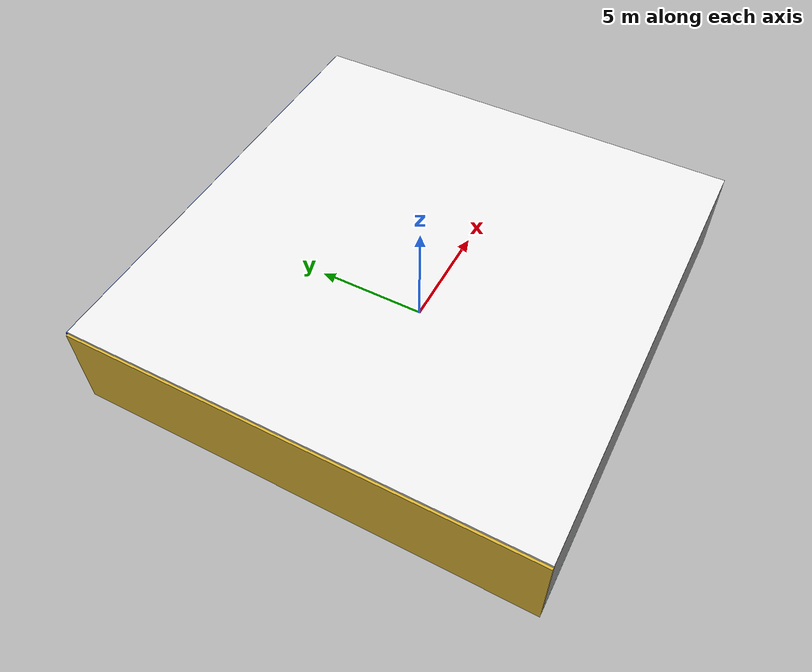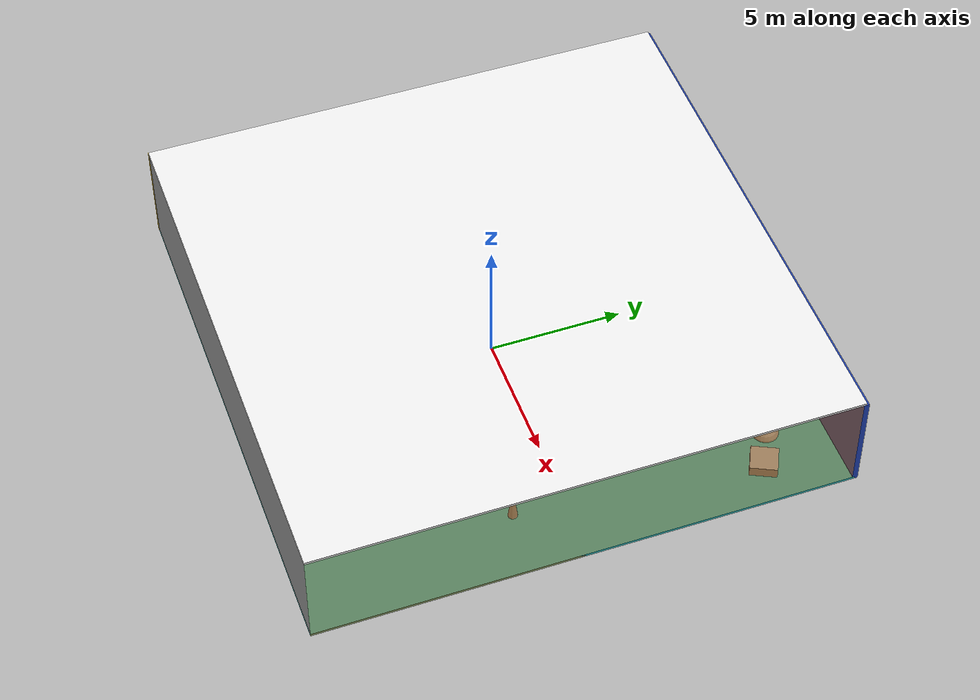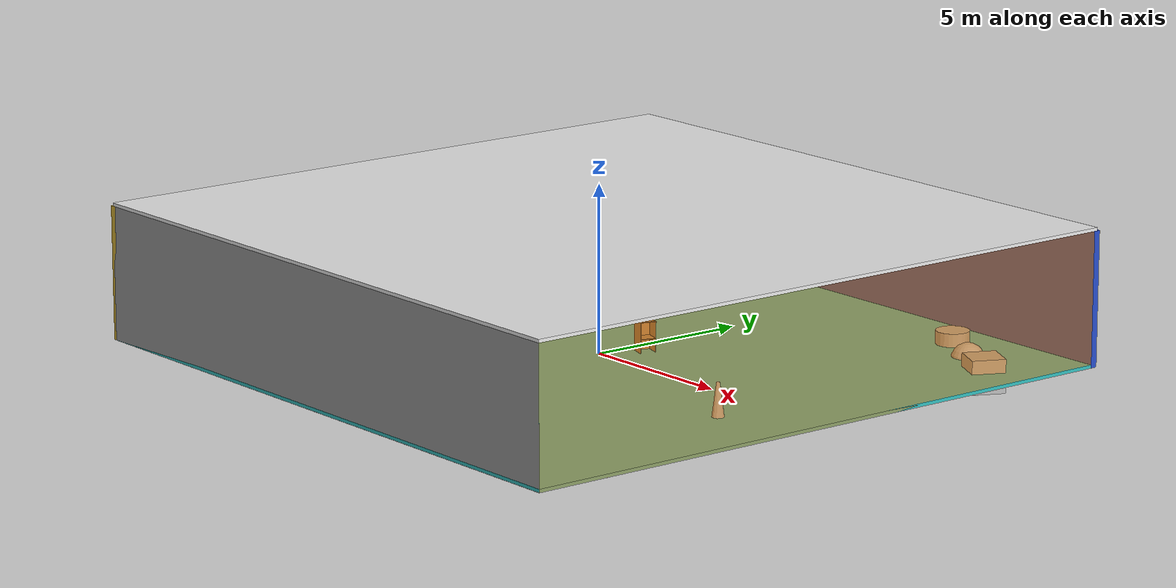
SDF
<sdf version="1.4">
 <world name="default">
  <physics type="ode">
   <max_step_size>0.001</max_step_size>
   <real_time_factor>1</real_time_factor>
   <real_time_update_rate>1000</real_time_update_rate>
   <gravity>0 0 -9.8</gravity>
  </physics>
  <scene><ambient>0.4 0.4 0.4 1</ambient><background>0.7 0.7 0.7 1</background><shadows>1</shadows></scene>
  <model name="Surrounding">
   <static>1</static>
   <link name="Ceiling">
    <collision name="Ceiling_Collision"><geometry><box><size>20 20 0.1</size></box></geometry></collision>
    <visual name="Ceiling_Visual">
     <geometry><box><size>20 20 0.1</size></box></geometry>
     <material>
      <script><uri>file://media/materials/scripts/gazebo.material</uri><name>Gazebo/White</name></script>
     </material>
    </visual>
    <pose>0 0 4.05 0 0 0</pose>
   </link>
   <link name="Wall_South">
    <collision name="Wall_South_Collision">
     <geometry><box><size>20 0 4</size></box></geometry>
     <pose>0 0 2 0 -0 0</pose>
    </collision>
    <visual name="Wall_South_Visual">
     <pose>0 0 2 0 -0 0</pose>
     <geometry><box><size>20 0 4</size></box></geometry>
     <material>
      <script><uri>file://media/materials/scripts/gazebo.material</uri><name>Gazebo/Grey</name></script>
     </material>
    </visual>
    <velocity_decay><linear>0</linear><angular>0</angular></velocity_decay>
    <pose>0 -10 0 0 -0 0</pose>
   </link>
   <link name="Wall_East">
    <collision name="Wall_21_Collision">
     <geometry><box><size>20 0 4</size></box></geometry>
     <pose>0 0 2 0 -0 0</pose>
    </collision>
    <visual name="Wall_21_Visual">
     <pose>0 0 2 0 -0 0</pose>
     <geometry><box><size>20 0 4</size></box></geometry>
     <material>
      <script>
       <uri>file://media/materials/scripts/gazebo.material</uri>
       <name>Gazebo/OrangeTransparent</name>
      </script>
     </material>
    </visual>
    <velocity_decay><linear>0</linear><angular>0</angular></velocity_decay>
    <pose>10 0 0 0 -0 1.5708</pose>
   </link>
   <link name="Wall_North">
    <collision name="Wall_22_Collision">
     <geometry><box><size>20 0.2 4</size></box></geometry>
     <pose>0 0 2 0 -0 0</pose>
    </collision>
    <visual name="Wall_22_Visual">
     <pose>0 0 2 0 -0 0</pose>
     <geometry><box><size>20 0.2 4</size></box></geometry>
     <material>
      <script><uri>file://media/materials/scripts/gazebo.material</uri><name>Gazebo/BlueGlow</name></script>
     </material>
    </visual>
    <velocity_decay><linear>0</linear><angular>0</angular></velocity_decay>
    <pose>0 10 0 0 -0 0</pose>
   </link>
   <link name="Wall_West">
    <collision name="Wall_23_Collision">
     <geometry><box><size>20 0.2 4</size></box></geometry>
     <pose>0 0 2 0 -0 0</pose>
    </collision>
    <visual name="Wall_23_Visual">
     <pose>0 0 2 0 -0 0</pose>
     <geometry><box><size>20 0.2 4</size></box></geometry>
     <material>
      <script><uri>file://media/materials/scripts/gazebo.material</uri><name>Gazebo/Gold</name></script>
     </material>
    </visual>
    <velocity_decay><linear>0</linear><angular>0</angular></velocity_decay>
    <pose>-10 0 0 0 0 -1.5708</pose>
   </link>
   <link name="Ground_link">
    <collision name="collision">
     <pose>0 0 .05 0 -0 0</pose>
     <geometry><box><size>20 20 0.1</size></box></geometry>
    </collision>
    <visual name="visual">
     <pose>0 0 .05 0 -0 0</pose>
     <geometry><box><size>20 20 0.1</size></box></geometry>
     <material>
      <script><uri>file://media/materials/scripts/gazebo.material</uri><name>Gazebo/TurquoiseGlow</name></script>
     </material>
    </visual>
   </link>
   <static>1</static>
  </model>
  <spherical_coordinates>
   <surface_model>EARTH_WGS84</surface_model>
   <latitude_deg>0</latitude_deg>
   <longitude_deg>0</longitude_deg>
   <elevation>0</elevation>
   <heading_deg>0</heading_deg>
  </spherical_coordinates>
  <light name="lightball_0" type="diffuse">
   <diffuse>0.8 0.8 0.8 1</diffuse>
   <specular>0.2 0.2 0.2 1</specular>
   <attenuation>
    <range>100</range>
    <constant>0.7</constant>
    <linear>0.01</linear>
    <quadratic>0.001</quadratic>
   </attenuation>
   <direction>-0.5 0.1 -0.9</direction>
   <pose>7.24578934787 -3.66631825587 2.05471297567 0 0 0</pose>
  </light>
  <light name="lightball_1" type="diffuse">
   <diffuse>0.8 0.8 0.8 1</diffuse>
   <specular>0.2 0.2 0.2 1</specular>
   <attenuation>
    <range>100</range>
    <constant>0.7</constant>
    <linear>0.01</linear>
    <quadratic>0.001</quadratic>
   </attenuation>
   <direction>-0.5 0.1 -0.9</direction>
   <pose>-7.23546153163 4.01638836197 3.33396613608 0 0 0</pose>
  </light>
  <light name="lightball_2" type="diffuse">
   <diffuse>0.8 0.8 0.8 1</diffuse>
   <specular>0.2 0.2 0.2 1</specular>
   <attenuation>
    <range>100</range>
    <constant>0.7</constant>
    <linear>0.01</linear>
    <quadratic>0.001</quadratic>
   </attenuation>
   <direction>-0.5 0.1 -0.9</direction>
   <pose>9.767134554 0.293936388362 0.616841681062 0 0 0</pose>
  </light>
  <light name="lightball_3" type="diffuse">
   <diffuse>0.8 0.8 0.8 1</diffuse>
   <specular>0.2 0.2 0.2 1</specular>
   <attenuation>
    <range>100</range>
    <constant>0.7</constant>
    <linear>0.01</linear>
    <quadratic>0.001</quadratic>
   </attenuation>
   <direction>-0.5 0.1 -0.9</direction>
   <pose>-0.861252278083 6.29635055513 0.883354320002 0 0 0</pose>
  </light>
  <light name="lightball_4" type="diffuse">
   <diffuse>0.8 0.8 0.8 1</diffuse>
   <specular>0.2 0.2 0.2 1</specular>
   <attenuation>
    <range>100</range>
    <constant>0.7</constant>
    <linear>0.01</linear>
    <quadratic>0.001</quadratic>
   </attenuation>
   <direction>-0.5 0.1 -0.9</direction>
   <pose>6.11506102172 9.16973780283 1.93866403377 0 0 0</pose>
  </light>
  <include><uri>model://cabinet</uri><pose>-4.19592029728 4.24181490079 0 0 0 0.14619010349</pose></include>
  <include>
   <uri>model://robocup_3Dsim_goal</uri>
   <pose>-1.42616188297 -4.17004693952 0 0 0 2.74323478961</pose>
  </include>
  <include><uri>model://cabinet</uri><pose>0.87874761909 0.97936919146 0 0 0 2.84840335349</pose></include>
  <include>
   <uri>model://construction_cone</uri>
   <pose>7.57380384501 -1.92469006562 0 0 0 2.81283874488</pose>
  </include>
  <include>
   <uri>model://textured_shapes</uri>
   <pose>7.10666050686 7.82323548154 0 0 0 1.11933801922</pose>
  </include>
 </world>
</sdf>

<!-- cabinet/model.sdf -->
<sdf version="1.5">
  <model name="cabinet">
    <static>true</static>
    <link name="cabinet_bottom_plate">
      <inertial>
        <pose>0 0 -1 0 0 0</pose>
        <inertia>
          <ixx>2.050000</ixx>
          <ixy>0</ixy>
          <ixz>0</ixz>
          <iyy>2.050000</iyy>
          <iyz>0</iyz>
          <izz>2.050000</izz>
        </inertia>
        <mass>25.000000</mass>
      </inertial>
      <collision name="cabinet_bottom_plate_geom">
        <pose>0 0 0.010000 0 0 0</pose>
        <geometry>
          <box>
            <size>0.450000 0.450000 0.020000</size>
          </box>
        </geometry>
      </collision>
      <visual name="cabinet_bottom_plate_geom_visual">
        <pose>0 0 0.010000 0 0 0</pose>
        <geometry>
          <box>
            <size>0.450000 0.450000 0.020000</size>
          </box>
        </geometry>
        <material>
          <script>
            <uri>model://media/materials/scripts/gazebo.material</uri>
            <name>Gazebo/Wood</name>
          </script>
        </material>
      </visual>
      <collision name="cabinet_bottom_plate_geom_cabinet_back_plate">
        <pose>0.235000 0 0.510000 0 0 0</pose>
        <geometry>
          <box>
            <size>0.020000 0.450000 1.020000</size>
          </box>
        </geometry>
      </collision>
      <visual name="cabinet_bottom_plate_geom_cabinet_back_plate_visual">
        <pose>0.235000 0 0.510000 0 0 0</pose>
        <geometry>
          <box>
            <size>0.020000 0.450000 1.020000</size>
          </box>
        </geometry>
        <material>
          <script>
            <uri>model://media/materials/scripts/gazebo.material</uri>
            <name>Gazebo/Wood</name>
          </script>
        </material>
      </visual>
      <collision name="cabinet_bottom_plate_geom_cabinet_left_plate">
        <pose>0 0.235000 0.510000 0 0 0</pose>
        <geometry>
          <box>
            <size>0.450000 0.020000 1.020000</size>
          </box>
        </geometry>
      </collision>
      <visual name="cabinet_bottom_plate_geom_cabinet_left_plate_visual">
        <pose>0 0.235000 0.510000 0 0 0</pose>
        <geometry>
          <box>
            <size>0.450000 0.020000 1.020000</size>
          </box>
        </geometry>
        <material>
          <script>
            <uri>model://media/materials/scripts/gazebo.material</uri>
            <name>Gazebo/Wood</name>
          </script>
        </material>
      </visual>
      <collision name="cabinet_bottom_plate_geom_cabinet_middle_plate">
        <pose>0 0 0.510000 0 0 0</pose>
        <geometry>
          <box>
            <size>0.450000 0.450000 0.020000</size>
          </box>
        </geometry>
      </collision>
      <visual name="cabinet_bottom_plate_geom_cabinet_middle_plate_visual">
        <pose>0 0 0.510000 0 0 0</pose>
        <geometry>
          <box>
            <size>0.450000 0.450000 0.020000</size>
          </box>
        </geometry>
        <material>
          <script>
            <uri>model://media/materials/scripts/gazebo.material</uri>
            <name>Gazebo/Wood</name>
          </script>
        </material>
      </visual>
      <collision name="cabinet_bottom_plate_geom_cabinet_right_plate">
        <pose>0 -0.235000 0.510000 0 0 0</pose>
        <geometry>
          <box>
            <size>0.450000 0.020000 1.020000</size>
          </box>
        </geometry>
      </collision>
      <visual name="cabinet_bottom_plate_geom_cabinet_right_plate_visual">
        <pose>0 -0.235000 0.510000 0 0 0</pose>
        <geometry>
          <box>
            <size>0.450000 0.020000 1.020000</size>
          </box>
        </geometry>
        <material>
          <script>
            <uri>model://media/materials/scripts/gazebo.material</uri>
            <name>Gazebo/Wood</name>
          </script>
        </material>
      </visual>
      <collision name="cabinet_bottom_plate_geom_cabinet_top_plate">
        <pose>0 0 1.010000 0 0 0</pose>
        <geometry>
          <box>
            <size>0.450000 0.450000 0.020000</size>
          </box>
        </geometry>
      </collision>
      <visual name="cabinet_bottom_plate_geom_cabinet_top_plate_visual">
        <pose>0 0 1.010000 0 0 0</pose>
        <geometry>
          <box>
            <size>0.450000 0.450000 0.020000</size>
          </box>
        </geometry>
        <material>
          <script>
            <uri>model://media/materials/scripts/gazebo.material</uri>
            <name>Gazebo/Wood</name>
          </script>
        </material>
      </visual>
    </link>
  </model>
</sdf>

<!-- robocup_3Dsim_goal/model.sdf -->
<sdf version="1.5">
  <model name="robocup_3d_goal">
    <static>true</static>
    <link name="left_post">
      <pose>0 1.05 0.45 0 0 0</pose>
      <collision name="collision">
        <geometry>
          <cylinder>
            <radius>0.05</radius>
            <length>0.9</length>
          </cylinder>
        </geometry>
      </collision>
      <visual name="visual">
        <geometry>
          <cylinder>
            <radius>0.05</radius>
            <length>0.9</length>
          </cylinder>
        </geometry>
        <material>
          <script>
            <uri>file://media/materials/scripts/gazebo.material</uri>
            <name>Gazebo/ZincYellow</name>
          </script>
        </material>
      </visual>
    </link>
    <link name="left_support_horiz_lower">
      <pose>0.30 1.05 0.01 0 0 0</pose>
      <collision name="collision">
        <geometry>
          <box>
            <size>0.50 0.02 0.02</size>
          </box>
        </geometry>
      </collision>
      <visual name="visual">
        <geometry>
          <box>
            <size>0.50 0.02 0.02</size>
          </box>
        </geometry>
        <material>
          <script>
            <uri>file://media/materials/scripts/gazebo.material</uri>
            <name>Gazebo/White</name>
          </script>
        </material>
      </visual>
    </link>
    <link name="left_support_horiz_upper">
      <pose>0.30 1.05 0.79 0 0 0</pose>
      <collision name="collision">
        <geometry>
          <box>
            <size>0.50 0.02 0.02</size>
          </box>
        </geometry>
      </collision>
      <visual name="visual">
        <geometry>
          <box>
            <size>0.50 0.02 0.02</size>
          </box>
        </geometry>
        <material>
          <script>
            <uri>file://media/materials/scripts/gazebo.material</uri>
            <name>Gazebo/White</name>
          </script>
        </material>
      </visual>
    </link>
    <link name="left_support_vertical">
      <pose>0.56 1.05 0.4 0 1.5708 0</pose>
      <collision name="collision">
        <geometry>
          <box>
            <size>0.80 0.02 0.02</size>
          </box>
        </geometry>
      </collision>
      <visual name="visual">
        <geometry>
          <box>
            <size>0.80 0.02 0.02</size>
          </box>
        </geometry>
        <material>
          <script>
            <uri>file://media/materials/scripts/gazebo.material</uri>
            <name>Gazebo/White</name>
          </script>
        </material>
      </visual>
    </link>
    <link name="right_support_horiz_lower">
      <pose>0.30 -1.05 0.01 0 0 0</pose>
      <collision name="collision">
        <geometry>
          <box>
            <size>0.50 0.02 0.02</size>
          </box>
        </geometry>
      </collision>
      <visual name="visual">
        <geometry>
          <box>
            <size>0.50 0.02 0.02</size>
          </box>
        </geometry>
        <material>
          <script>
            <uri>file://media/materials/scripts/gazebo.material</uri>
            <name>Gazebo/White</name>
          </script>
        </material>
      </visual>
    </link>
    <link name="right_support_horiz_upper">
      <pose>0.30 -1.05 0.79 0 0 0</pose>
      <collision name="collision">
        <geometry>
          <box>
            <size>0.50 0.02 0.02</size>
          </box>
        </geometry>
      </collision>
      <visual name="visual">
        <geometry>
          <box>
            <size>0.50 0.02 0.02</size>
          </box>
        </geometry>
        <material>
          <script>
            <uri>file://media/materials/scripts/gazebo.material</uri>
            <name>Gazebo/White</name>
          </script>
        </material>
      </visual>
    </link>
    <link name="right_support_vertical">
      <pose>0.56 -1.05 0.4 0 1.5708 0</pose>
      <collision name="collision">
        <geometry>
          <box>
            <size>0.80 0.02 0.02</size>
          </box>
        </geometry>
      </collision>
      <visual name="visual">
        <geometry>
          <box>
            <size>0.80 0.02 0.02</size>
          </box>
        </geometry>
        <material>
          <script>
            <uri>file://media/materials/scripts/gazebo.material</uri>
            <name>Gazebo/White</name>
          </script>
        </material>
      </visual>
    </link>
    <link name="center_support_horiz_lower">
      <pose>0.56 0 0.01 0 1.5708 0</pose>
      <collision name="collision">
        <geometry>
          <box>
            <size>0.02 2.08 0.02</size>
          </box>
        </geometry>
      </collision>
      <visual name="visual">
        <geometry>
          <box>
            <size>0.02 2.08 0.02</size>
          </box>
        </geometry>
        <material>
          <script>
            <uri>file://media/materials/scripts/gazebo.material</uri>
            <name>Gazebo/White</name>
          </script>
        </material>
      </visual>
    </link>
    <link name="center_support_horiz_upper">
      <pose>0.56 0 0.79 0 1.5708 0</pose>
      <collision name="collision">
        <geometry>
          <box>
            <size>0.02 2.08 0.02</size>
          </box>
        </geometry>
      </collision>
      <visual name="visual">
        <geometry>
          <box>
            <size>0.02 2.08 0.02</size>
          </box>
        </geometry>
        <material>
          <script>
            <uri>file://media/materials/scripts/gazebo.material</uri>
            <name>Gazebo/White</name>
          </script>
        </material>
      </visual>
    </link>
    <link name="right_post">
      <pose>0 -1.05 0.45 0 0 0</pose>
      <collision name="collision">
        <geometry>
          <cylinder>
            <radius>0.05</radius>
            <length>0.9</length>
          </cylinder>
        </geometry>
      </collision>
      <visual name="visual">
        <geometry>
          <cylinder>
            <radius>0.05</radius>
            <length>0.9</length>
          </cylinder>
        </geometry>
        <material>
          <script>
            <uri>file://media/materials/scripts/gazebo.material</uri>
            <name>Gazebo/ZincYellow</name>
          </script>
        </material>
      </visual>
    </link>
    <link name="crossbar">
      <pose>0 0 0.85 1.57 1.57 0</pose>
      <collision name="collision">
        <geometry>
          <cylinder>
            <radius>0.05</radius>
            <length>2.0</length>
          </cylinder>
        </geometry>
      </collision>
      <visual name="visual">
        <geometry>
          <cylinder>
            <radius>0.05</radius>
            <length>2.0</length>
          </cylinder>
        </geometry>
        <material>
          <script>
            <uri>file://media/materials/scripts/gazebo.material</uri>
            <name>Gazebo/ZincYellow</name>
          </script>
        </material>
      </visual>
    </link>
    <link name="center_net">
      <pose>0.56 0 0.40 0 0 0</pose>
      <collision name="collision">
        <geometry>
          <box>
            <size>0.01 2.1 0.80</size>
          </box>
        </geometry>
      </collision>
      <visual name="visual">
        <geometry>
          <box>
            <size>0.01 2.1 0.80</size>
          </box>
        </geometry>
        <material>
          <script>
            <uri>model://../model_source/models/robocup09_spl_field/materials/scripts/</uri>
            <uri>model://../model_source/models/robocup09_spl_field/materials/textures/</uri>
            <name>RoboCup/Net</name>
          </script>
        </material>
      </visual>
    </link>
    <link name="left_net">
      <pose>0.30 1.05 0.40 0 0 0</pose>
      <collision name="collision">
        <geometry>
          <box>
            <size>0.50 0.01 0.76</size>
          </box>
        </geometry>
      </collision>
      <visual name="visual">
        <geometry>
          <box>
            <size>0.50 0.01 0.76</size>
          </box>
        </geometry>
        <material>
          <script>
            <uri>model://../model_source/models/robocup09_spl_field/materials/scripts/</uri>
            <uri>model://../model_source/models/robocup09_spl_field/materials/textures/</uri>
            <name>RoboCup/Net</name>
          </script>
        </material>
      </visual>
    </link>
    <link name="right_net">
      <pose>0.30 -1.05 0.40 0 0 0</pose>
      <collision name="collision">
        <geometry>
          <box>
            <size>0.50 0.01 0.76</size>
          </box>
        </geometry>
      </collision>
      <visual name="visual">
        <geometry>
          <box>
            <size>0.50 0.01 0.76</size>
          </box>
        </geometry>
        <material>
          <script>
            <uri>model://../model_source/models/robocup09_spl_field/materials/scripts/</uri>
            <uri>model://../model_source/models/robocup09_spl_field/materials/textures/</uri>
            <name>RoboCup/Net</name>
          </script>
        </material>
      </visual>
    </link>
  </model>
</sdf>

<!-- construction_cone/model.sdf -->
<sdf version="1.5">
  <model name="Construction Cone">
    <link name="link">
      <collision name="collision">
        <geometry>
          <mesh>
            <scale>10 10 10</scale>
            <uri>file://isr-testbed/construction_cone/meshes/construction_cone.dae</uri>
          </mesh>
        </geometry>
      </collision>
      <visual name="visual">
        <geometry>
          <mesh>
            <scale>10 10 10</scale>
            <uri>file://isr-testbed/construction_cone/meshes/construction_cone.dae</uri>
          </mesh>
        </geometry>
      </visual>
    </link>
  </model>
</sdf>

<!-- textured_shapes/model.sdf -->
<sdf version="1.6">
  <model name="textured_shapes">
    <pose>0 0 0.5 0 0 0</pose>
    <link name="box">
      <pose>0 -1.5 0 0 0 0</pose>
      <collision name="collision">
        <geometry>
          <box>
            <size>1 1 1</size>
          </box>
        </geometry>
      </collision>
      <visual name="visual">
        <geometry>
          <box>
            <size>1 1 1</size>
          </box>
        </geometry>
        <material>
          <script>
            <uri>model://../model_source/models/textured_shapes/materials/scripts</uri>
            <uri>model://../model_source/models/textured_shapes/materials/textures</uri>
            <name>TexturedShape/Squares</name>
          </script>
        </material>
      </visual>
    </link>
    <link name="sphere">
      <collision name="collision">
        <geometry>
          <sphere>
            <radius>0.5</radius>
          </sphere>
        </geometry>
      </collision>
      <visual name="visual">
        <geometry>
          <sphere>
            <radius>0.5</radius>
          </sphere>
        </geometry>
        <material>
          <script>
            <uri>model://../model_source/models/textured_shapes/materials/scripts</uri>
            <uri>model://../model_source/models/textured_shapes/materials/textures</uri>
            <name>TexturedShape/Squares</name>
          </script>
        </material>
      </visual>
    </link>
    <link name="cylinder">
      <pose>0 1.5 0 0 0 0</pose>
      <collision name="collision">
        <geometry>
          <cylinder>
            <radius>0.5</radius>
            <length>1</length>
          </cylinder>
        </geometry>
      </collision>
      <visual name="visual">
        <geometry>
          <cylinder>
            <radius>0.5</radius>
            <length>1</length>
          </cylinder>
        </geometry>
        <material>
          <script>
            <uri>model://../model_source/models/textured_shapes/materials/scripts</uri>
            <uri>model://../model_source/models/textured_shapes/materials/textures</uri>
            <name>TexturedShape/Squares</name>
          </script>
        </material>
      </visual>
    </link>
  </model>
</sdf>
